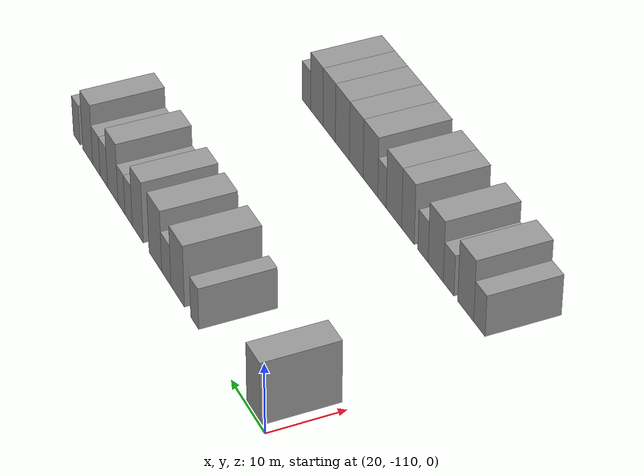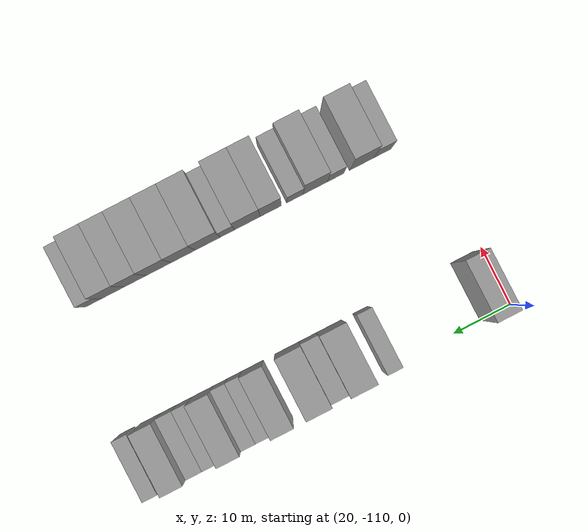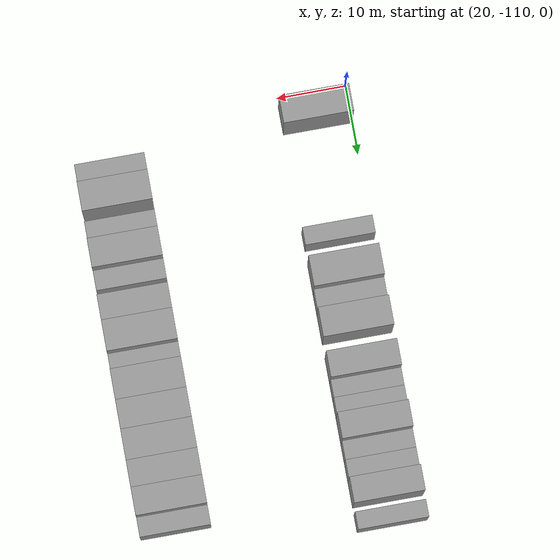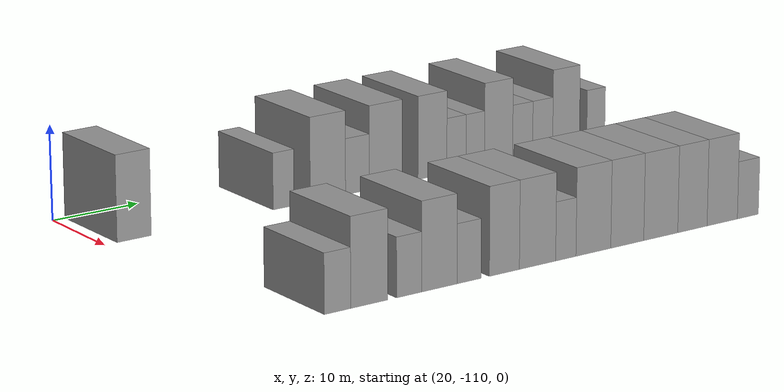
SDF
<sdf version="1.6">
 <world name="default">
  <model name="building_30">
   <static>1</static>
   <pose>25.0000 -106.5987 0 0.000000 0.000000 0.000000</pose>
   <link name="link">
    <pose>0 0 4.50 0 0 0</pose>
    <collision name="collision"><geometry><box><size>10.0000 3.9787 9.0000</size></box></geometry></collision>
    <visual name="visual">
     <cast_shadows>0</cast_shadows>
     <geometry><box><size>10.0000 3.9787 9.0000</size></box></geometry>
     <material>
      <script>
       <uri>model://grey_wall/materials/scripts</uri>
       <uri>model://grey_wall/materials/textures</uri>
       <name>vrc/grey_wall</name>
      </script>
     </material>
    </visual>
   </link>
  </model>
  <model name="building_31">
   <static>1</static>
   <pose>25.0000 -88.7700 0 0.000000 0.000000 0.000000</pose>
   <link name="link">
    <pose>0 0 3.00 0 0 0</pose>
    <collision name="collision"><geometry><box><size>10.0000 2.5595 6.0000</size></box></geometry></collision>
    <visual name="visual">
     <cast_shadows>0</cast_shadows>
     <geometry><box><size>10.0000 2.5595 6.0000</size></box></geometry>
     <material>
      <script>
       <uri>model://grey_wall/materials/scripts</uri>
       <uri>model://grey_wall/materials/textures</uri>
       <name>vrc/grey_wall</name>
      </script>
     </material>
    </visual>
   </link>
  </model>
  <model name="building_32">
   <static>1</static>
   <pose>25.0000 -83.2919 0 0.000000 0.000000 0.000000</pose>
   <link name="link">
    <pose>0 0 4.50 0 0 0</pose>
    <collision name="collision"><geometry><box><size>10.0000 4.3967 9.0000</size></box></geometry></collision>
    <visual name="visual">
     <cast_shadows>0</cast_shadows>
     <geometry><box><size>10.0000 4.3967 9.0000</size></box></geometry>
     <material>
      <script>
       <uri>model://grey_wall/materials/scripts</uri>
       <uri>model://grey_wall/materials/textures</uri>
       <name>vrc/grey_wall</name>
      </script>
     </material>
    </visual>
   </link>
  </model>
  <model name="building_33">
   <static>1</static>
   <pose>25.0000 -79.5951 0 0.000000 0.000000 0.000000</pose>
   <link name="link">
    <pose>0 0 3.00 0 0 0</pose>
    <collision name="collision"><geometry><box><size>10.0000 2.9969 6.0000</size></box></geometry></collision>
    <visual name="visual">
     <cast_shadows>0</cast_shadows>
     <geometry><box><size>10.0000 2.9969 6.0000</size></box></geometry>
     <material>
      <script>
       <uri>model://grey_wall/materials/scripts</uri>
       <uri>model://grey_wall/materials/textures</uri>
       <name>vrc/grey_wall</name>
      </script>
     </material>
    </visual>
   </link>
  </model>
  <model name="building_34">
   <static>1</static>
   <pose>25.0000 -75.9848 0 0.000000 0.000000 0.000000</pose>
   <link name="link">
    <pose>0 0 4.50 0 0 0</pose>
    <collision name="collision"><geometry><box><size>10.0000 4.2237 9.0000</size></box></geometry></collision>
    <visual name="visual">
     <cast_shadows>0</cast_shadows>
     <geometry><box><size>10.0000 4.2237 9.0000</size></box></geometry>
     <material>
      <script>
       <uri>model://grey_wall/materials/scripts</uri>
       <uri>model://grey_wall/materials/textures</uri>
       <name>vrc/grey_wall</name>
      </script>
     </material>
    </visual>
   </link>
  </model>
  <model name="building_35">
   <static>1</static>
   <pose>25.0000 -70.0008 0 0.000000 0.000000 0.000000</pose>
   <link name="link">
    <pose>0 0 4.50 0 0 0</pose>
    <collision name="collision"><geometry><box><size>10.0000 3.7443 9.0000</size></box></geometry></collision>
    <visual name="visual">
     <cast_shadows>0</cast_shadows>
     <geometry><box><size>10.0000 3.7443 9.0000</size></box></geometry>
     <material>
      <script>
       <uri>model://grey_wall/materials/scripts</uri>
       <uri>model://grey_wall/materials/textures</uri>
       <name>vrc/grey_wall</name>
      </script>
     </material>
    </visual>
   </link>
  </model>
  <model name="building_36">
   <static>1</static>
   <pose>25.0000 -66.8665 0 0.000000 0.000000 0.000000</pose>
   <link name="link">
    <pose>0 0 3.00 0 0 0</pose>
    <collision name="collision"><geometry><box><size>10.0000 2.5242 6.0000</size></box></geometry></collision>
    <visual name="visual">
     <cast_shadows>0</cast_shadows>
     <geometry><box><size>10.0000 2.5242 6.0000</size></box></geometry>
     <material>
      <script>
       <uri>model://grey_wall/materials/scripts</uri>
       <uri>model://grey_wall/materials/textures</uri>
       <name>vrc/grey_wall</name>
      </script>
     </material>
    </visual>
   </link>
  </model>
  <model name="building_37">
   <static>1</static>
   <pose>25.0000 -64.3903 0 0.000000 0.000000 0.000000</pose>
   <link name="link">
    <pose>0 0 3.00 0 0 0</pose>
    <collision name="collision"><geometry><box><size>10.0000 2.4282 6.0000</size></box></geometry></collision>
    <visual name="visual">
     <cast_shadows>0</cast_shadows>
     <geometry><box><size>10.0000 2.4282 6.0000</size></box></geometry>
     <material>
      <script>
       <uri>model://grey_wall/materials/scripts</uri>
       <uri>model://grey_wall/materials/textures</uri>
       <name>vrc/grey_wall</name>
      </script>
     </material>
    </visual>
   </link>
  </model>
  <model name="building_38">
   <static>1</static>
   <pose>25.0000 -61.3049 0 0.000000 0.000000 0.000000</pose>
   <link name="link">
    <pose>0 0 4.50 0 0 0</pose>
    <collision name="collision"><geometry><box><size>10.0000 3.7427 9.0000</size></box></geometry></collision>
    <visual name="visual">
     <cast_shadows>0</cast_shadows>
     <geometry><box><size>10.0000 3.7427 9.0000</size></box></geometry>
     <material>
      <script>
       <uri>model://grey_wall/materials/scripts</uri>
       <uri>model://grey_wall/materials/textures</uri>
       <name>vrc/grey_wall</name>
      </script>
     </material>
    </visual>
   </link>
  </model>
  <model name="building_39">
   <static>1</static>
   <pose>25.0000 -58.0913 0 0.000000 0.000000 0.000000</pose>
   <link name="link">
    <pose>0 0 3.00 0 0 0</pose>
    <collision name="collision"><geometry><box><size>10.0000 2.6844 6.0000</size></box></geometry></collision>
    <visual name="visual">
     <cast_shadows>0</cast_shadows>
     <geometry><box><size>10.0000 2.6844 6.0000</size></box></geometry>
     <material>
      <script>
       <uri>model://grey_wall/materials/scripts</uri>
       <uri>model://grey_wall/materials/textures</uri>
       <name>vrc/grey_wall</name>
      </script>
     </material>
    </visual>
   </link>
  </model>
  <model name="building_40">
   <static>1</static>
   <pose>25.0000 -55.3934 0 0.000000 0.000000 0.000000</pose>
   <link name="link">
    <pose>0 0 3.00 0 0 0</pose>
    <collision name="collision"><geometry><box><size>10.0000 2.7114 6.0000</size></box></geometry></collision>
    <visual name="visual">
     <cast_shadows>0</cast_shadows>
     <geometry><box><size>10.0000 2.7114 6.0000</size></box></geometry>
     <material>
      <script>
       <uri>model://grey_wall/materials/scripts</uri>
       <uri>model://grey_wall/materials/textures</uri>
       <name>vrc/grey_wall</name>
      </script>
     </material>
    </visual>
   </link>
  </model>
  <model name="building_41">
   <static>1</static>
   <pose>25.0000 -52.2071 0 0.000000 0.000000 0.000000</pose>
   <link name="link">
    <pose>0 0 4.50 0 0 0</pose>
    <collision name="collision"><geometry><box><size>10.0000 3.6612 9.0000</size></box></geometry></collision>
    <visual name="visual">
     <cast_shadows>0</cast_shadows>
     <geometry><box><size>10.0000 3.6612 9.0000</size></box></geometry>
     <material>
      <script>
       <uri>model://grey_wall/materials/scripts</uri>
       <uri>model://grey_wall/materials/textures</uri>
       <name>vrc/grey_wall</name>
      </script>
     </material>
    </visual>
   </link>
  </model>
  <model name="building_42">
   <static>1</static>
   <pose>25.0000 -48.1247 0 0.000000 0.000000 0.000000</pose>
   <link name="link">
    <pose>0 0 3.00 0 0 0</pose>
    <collision name="collision"><geometry><box><size>10.0000 2.5035 6.0000</size></box></geometry></collision>
    <visual name="visual">
     <cast_shadows>0</cast_shadows>
     <geometry><box><size>10.0000 2.5035 6.0000</size></box></geometry>
     <material>
      <script>
       <uri>model://grey_wall/materials/scripts</uri>
       <uri>model://grey_wall/materials/textures</uri>
       <name>vrc/grey_wall</name>
      </script>
     </material>
    </visual>
   </link>
  </model>
  <model name="building_135">
   <static>1</static>
   <pose>55.0000 -103.0517 0 0.000000 0.000000 0.000000</pose>
   <link name="link">
    <pose>0 0 3.00 0 0 0</pose>
    <collision name="collision"><geometry><box><size>10.0000 2.9961 6.0000</size></box></geometry></collision>
    <visual name="visual">
     <cast_shadows>0</cast_shadows>
     <geometry><box><size>10.0000 2.9961 6.0000</size></box></geometry>
     <material>
      <script>
       <uri>model://grey_wall/materials/scripts</uri>
       <uri>model://grey_wall/materials/textures</uri>
       <name>vrc/grey_wall</name>
      </script>
     </material>
    </visual>
   </link>
  </model>
  <model name="building_136">
   <static>1</static>
   <pose>55.0000 -99.4226 0 0.000000 0.000000 0.000000</pose>
   <link name="link">
    <pose>0 0 4.50 0 0 0</pose>
    <collision name="collision"><geometry><box><size>10.0000 4.2621 9.0000</size></box></geometry></collision>
    <visual name="visual">
     <cast_shadows>0</cast_shadows>
     <geometry><box><size>10.0000 4.2621 9.0000</size></box></geometry>
     <material>
      <script>
       <uri>model://grey_wall/materials/scripts</uri>
       <uri>model://grey_wall/materials/textures</uri>
       <name>vrc/grey_wall</name>
      </script>
     </material>
    </visual>
   </link>
  </model>
  <model name="building_137">
   <static>1</static>
   <pose>55.0000 -94.8352 0 0.000000 0.000000 0.000000</pose>
   <link name="link">
    <pose>0 0 3.00 0 0 0</pose>
    <collision name="collision"><geometry><box><size>10.0000 2.9128 6.0000</size></box></geometry></collision>
    <visual name="visual">
     <cast_shadows>0</cast_shadows>
     <geometry><box><size>10.0000 2.9128 6.0000</size></box></geometry>
     <material>
      <script>
       <uri>model://grey_wall/materials/scripts</uri>
       <uri>model://grey_wall/materials/textures</uri>
       <name>vrc/grey_wall</name>
      </script>
     </material>
    </visual>
   </link>
  </model>
  <model name="building_138">
   <static>1</static>
   <pose>55.0000 -91.2881 0 0.000000 0.000000 0.000000</pose>
   <link name="link">
    <pose>0 0 4.50 0 0 0</pose>
    <collision name="collision"><geometry><box><size>10.0000 4.1813 9.0000</size></box></geometry></collision>
    <visual name="visual">
     <cast_shadows>0</cast_shadows>
     <geometry><box><size>10.0000 4.1813 9.0000</size></box></geometry>
     <material>
      <script>
       <uri>model://grey_wall/materials/scripts</uri>
       <uri>model://grey_wall/materials/textures</uri>
       <name>vrc/grey_wall</name>
      </script>
     </material>
    </visual>
   </link>
  </model>
  <model name="building_139">
   <static>1</static>
   <pose>55.0000 -87.7635 0 0.000000 0.000000 0.000000</pose>
   <link name="link">
    <pose>0 0 3.00 0 0 0</pose>
    <collision name="collision"><geometry><box><size>10.0000 2.8680 6.0000</size></box></geometry></collision>
    <visual name="visual">
     <cast_shadows>0</cast_shadows>
     <geometry><box><size>10.0000 2.8680 6.0000</size></box></geometry>
     <material>
      <script>
       <uri>model://grey_wall/materials/scripts</uri>
       <uri>model://grey_wall/materials/textures</uri>
       <name>vrc/grey_wall</name>
      </script>
     </material>
    </visual>
   </link>
  </model>
  <model name="building_140">
   <static>1</static>
   <pose>55.0000 -83.5151 0 0.000000 0.000000 0.000000</pose>
   <link name="link">
    <pose>0 0 4.50 0 0 0</pose>
    <collision name="collision"><geometry><box><size>10.0000 3.6287 9.0000</size></box></geometry></collision>
    <visual name="visual">
     <cast_shadows>0</cast_shadows>
     <geometry><box><size>10.0000 3.6287 9.0000</size></box></geometry>
     <material>
      <script>
       <uri>model://grey_wall/materials/scripts</uri>
       <uri>model://grey_wall/materials/textures</uri>
       <name>vrc/grey_wall</name>
      </script>
     </material>
    </visual>
   </link>
  </model>
  <model name="building_141">
   <static>1</static>
   <pose>55.0000 -79.4785 0 0.000000 0.000000 0.000000</pose>
   <link name="link">
    <pose>0 0 4.50 0 0 0</pose>
    <collision name="collision"><geometry><box><size>10.0000 4.4445 9.0000</size></box></geometry></collision>
    <visual name="visual">
     <cast_shadows>0</cast_shadows>
     <geometry><box><size>10.0000 4.4445 9.0000</size></box></geometry>
     <material>
      <script>
       <uri>model://grey_wall/materials/scripts</uri>
       <uri>model://grey_wall/materials/textures</uri>
       <name>vrc/grey_wall</name>
      </script>
     </material>
    </visual>
   </link>
  </model>
  <model name="building_142">
   <static>1</static>
   <pose>55.0000 -76.0003 0 0.000000 0.000000 0.000000</pose>
   <link name="link">
    <pose>0 0 3.00 0 0 0</pose>
    <collision name="collision"><geometry><box><size>10.0000 2.5119 6.0000</size></box></geometry></collision>
    <visual name="visual">
     <cast_shadows>0</cast_shadows>
     <geometry><box><size>10.0000 2.5119 6.0000</size></box></geometry>
     <material>
      <script>
       <uri>model://grey_wall/materials/scripts</uri>
       <uri>model://grey_wall/materials/textures</uri>
       <name>vrc/grey_wall</name>
      </script>
     </material>
    </visual>
   </link>
  </model>
  <model name="building_143">
   <static>1</static>
   <pose>55.0000 -72.5652 0 0.000000 0.000000 0.000000</pose>
   <link name="link">
    <pose>0 0 4.50 0 0 0</pose>
    <collision name="collision"><geometry><box><size>10.0000 4.3583 9.0000</size></box></geometry></collision>
    <visual name="visual">
     <cast_shadows>0</cast_shadows>
     <geometry><box><size>10.0000 4.3583 9.0000</size></box></geometry>
     <material>
      <script>
       <uri>model://grey_wall/materials/scripts</uri>
       <uri>model://grey_wall/materials/textures</uri>
       <name>vrc/grey_wall</name>
      </script>
     </material>
    </visual>
   </link>
  </model>
  <model name="building_144">
   <static>1</static>
   <pose>55.0000 -68.2932 0 0.000000 0.000000 0.000000</pose>
   <link name="link">
    <pose>0 0 4.50 0 0 0</pose>
    <collision name="collision"><geometry><box><size>10.0000 4.1857 9.0000</size></box></geometry></collision>
    <visual name="visual">
     <cast_shadows>0</cast_shadows>
     <geometry><box><size>10.0000 4.1857 9.0000</size></box></geometry>
     <material>
      <script>
       <uri>model://grey_wall/materials/scripts</uri>
       <uri>model://grey_wall/materials/textures</uri>
       <name>vrc/grey_wall</name>
      </script>
     </material>
    </visual>
   </link>
  </model>
  <model name="building_145">
   <static>1</static>
   <pose>55.0000 -64.0112 0 0.000000 0.000000 0.000000</pose>
   <link name="link">
    <pose>0 0 4.50 0 0 0</pose>
    <collision name="collision"><geometry><box><size>10.0000 4.3783 9.0000</size></box></geometry></collision>
    <visual name="visual">
     <cast_shadows>0</cast_shadows>
     <geometry><box><size>10.0000 4.3783 9.0000</size></box></geometry>
     <material>
      <script>
       <uri>model://grey_wall/materials/scripts</uri>
       <uri>model://grey_wall/materials/textures</uri>
       <name>vrc/grey_wall</name>
      </script>
     </material>
    </visual>
   </link>
  </model>
  <model name="building_146">
   <static>1</static>
   <pose>55.0000 -59.9124 0 0.000000 0.000000 0.000000</pose>
   <link name="link">
    <pose>0 0 4.50 0 0 0</pose>
    <collision name="collision"><geometry><box><size>10.0000 3.8192 9.0000</size></box></geometry></collision>
    <visual name="visual">
     <cast_shadows>0</cast_shadows>
     <geometry><box><size>10.0000 3.8192 9.0000</size></box></geometry>
     <material>
      <script>
       <uri>model://grey_wall/materials/scripts</uri>
       <uri>model://grey_wall/materials/textures</uri>
       <name>vrc/grey_wall</name>
      </script>
     </material>
    </visual>
   </link>
  </model>
  <model name="building_147">
   <static>1</static>
   <pose>55.0000 -56.0056 0 0.000000 0.000000 0.000000</pose>
   <link name="link">
    <pose>0 0 4.50 0 0 0</pose>
    <collision name="collision"><geometry><box><size>10.0000 3.9946 9.0000</size></box></geometry></collision>
    <visual name="visual">
     <cast_shadows>0</cast_shadows>
     <geometry><box><size>10.0000 3.9946 9.0000</size></box></geometry>
     <material>
      <script>
       <uri>model://grey_wall/materials/scripts</uri>
       <uri>model://grey_wall/materials/textures</uri>
       <name>vrc/grey_wall</name>
      </script>
     </material>
    </visual>
   </link>
  </model>
  <model name="building_148">
   <static>1</static>
   <pose>55.0000 -52.6108 0 0.000000 0.000000 0.000000</pose>
   <link name="link">
    <pose>0 0 3.00 0 0 0</pose>
    <collision name="collision"><geometry><box><size>10.0000 2.7949 6.0000</size></box></geometry></collision>
    <visual name="visual">
     <cast_shadows>0</cast_shadows>
     <geometry><box><size>10.0000 2.7949 6.0000</size></box></geometry>
     <material>
      <script>
       <uri>model://grey_wall/materials/scripts</uri>
       <uri>model://grey_wall/materials/textures</uri>
       <name>vrc/grey_wall</name>
      </script>
     </material>
    </visual>
   </link>
  </model>
 </world>
</sdf>
